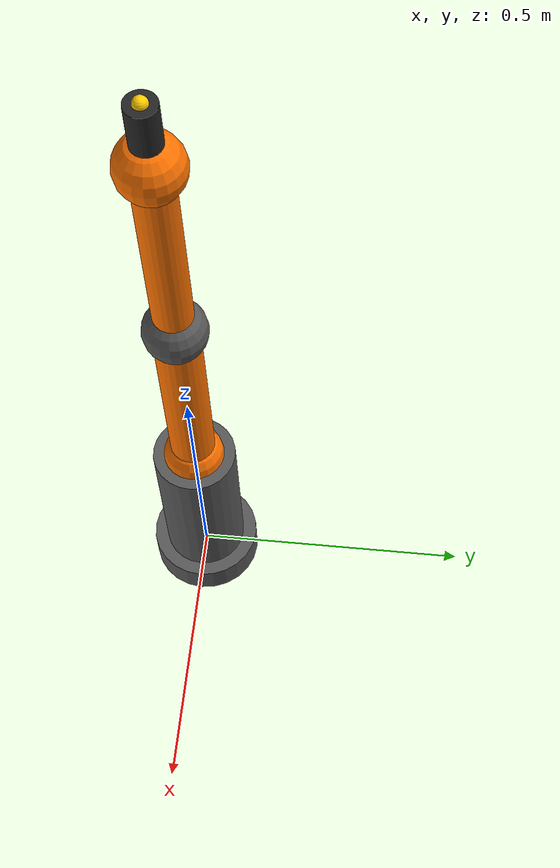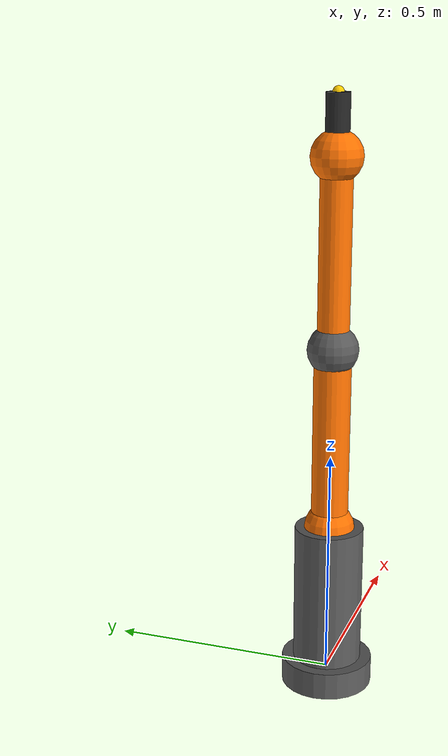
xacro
<?xml version="1.0" ?>
<robot name="poe_iiwa_robot" xmlns:xacro="http://ros.org/wiki/xacro">

  <xacro:property name="PI"       value="3.14159265358979"/>
  <xacro:property name="D_BASE"   value="0.340"/>  <!-- base to shoulder pivot -->
  <xacro:property name="L_SE"     value="0.400"/>  <!-- shoulder to elbow -->
  <xacro:property name="L_EW"     value="0.400"/>  <!-- elbow to wrist pivot -->
  <xacro:property name="D_TOOL"   value="0.126"/>  <!-- wrist to flange -->
  <xacro:property name="R"        value="0.040"/>  <!-- link tube radius -->
  <xacro:property name="R_JNT"    value="0.055"/>  <!-- joint sphere radius -->
  <xacro:property name="M"        value="2.0"/>    <!-- generic link mass -->

  <link name="world"/>
  <joint name="world_to_base" type="fixed">
    <parent link="world"/>
    <child  link="base_link"/>
    <origin xyz="0 0 0" rpy="0 0 0"/>
  </joint>

  <!-- base pedestal -->
  <link name="base_link">
    <inertial>
      <origin xyz="0 0 ${D_BASE/2}" rpy="0 0 0"/>
      <mass value="12.0"/>
      <inertia ixx="0.15" ixy="0" ixz="0" iyy="0.15" iyz="0" izz="0.06"/>
    </inertial>
    <visual>
      <origin xyz="0 0 ${D_BASE/2}" rpy="0 0 0"/>
      <geometry><cylinder radius="0.075" length="${D_BASE}"/></geometry>
      <material name="iiwa_grey"><color rgba="0.35 0.35 0.35 1"/></material>
    </visual>
    <visual>
      <origin xyz="0 0 0" rpy="0 0 0"/>
      <geometry><cylinder radius="0.100" length="0.06"/></geometry>
      <material name="iiwa_grey"><color rgba="0.35 0.35 0.35 1"/></material>
    </visual>
    <collision>
      <origin xyz="0 0 ${D_BASE/2}" rpy="0 0 0"/>
      <geometry><cylinder radius="0.075" length="${D_BASE}"/></geometry>
    </collision>
  </link>

  <!-- J0: waist — revolute Z -->
  <joint name="JOINT_0_ACT" type="revolute">
    <parent link="base_link"/>
    <child  link="link_1"/>
    <origin xyz="0 0 ${D_BASE}" rpy="0 0 0"/>
    <axis xyz="0 0 1"/>
    <limit lower="${-2.97}" upper="${2.97}" effort="320" velocity="1.48"/>
    <dynamics damping="1.0" friction="0.3"/>
  </joint>

  <!-- link_1: shoulder hub (J0=J1=J2 all concurrent here) -->
  <link name="link_1">
    <inertial>
      <origin xyz="0 0 0" rpy="0 0 0"/>
      <mass value="${M}"/>
      <inertia ixx="0.01" ixy="0" ixz="0" iyy="0.01" iyz="0" izz="0.006"/>
    </inertial>
    <visual>
      <origin xyz="0 0 0" rpy="0 0 0"/>
      <geometry><sphere radius="${R_JNT}"/></geometry>
      <material name="iiwa_orange"><color rgba="1.0 0.45 0.0 1"/></material>
    </visual>
    <collision>
      <origin xyz="0 0 0" rpy="0 0 0"/>
      <geometry><sphere radius="${R_JNT}"/></geometry>
    </collision>
  </link>

  <!-- J1: shoulder tilt — revolute Y (concurrent with J0) -->
  <joint name="JOINT_1_ACT" type="revolute">
    <parent link="link_1"/>
    <child  link="link_2"/>
    <origin xyz="0 0 0" rpy="0 0 0"/>
    <axis xyz="0 1 0"/>
    <limit lower="${-2.09}" upper="${2.09}" effort="320" velocity="1.48"/>
    <dynamics damping="1.0" friction="0.3"/>
  </joint>

  <!-- link_2: shoulder → J2 hub -->
  <link name="link_2">
    <inertial>
      <origin xyz="0 0 0" rpy="0 0 0"/>
      <mass value="0.5"/>
      <inertia ixx="0.002" ixy="0" ixz="0" iyy="0.002" iyz="0" izz="0.001"/>
    </inertial>
    <visual>
      <origin xyz="0 0 0" rpy="0 0 0"/>
      <geometry><sphere radius="${R_JNT*0.8}"/></geometry>
      <material name="iiwa_grey"><color rgba="0.5 0.5 0.5 1"/></material>
    </visual>
    <collision>
      <origin xyz="0 0 0" rpy="0 0 0"/>
      <geometry><sphere radius="${R_JNT*0.8}"/></geometry>
    </collision>
  </link>

  <!-- J2: shoulder pan — revolute Z (concurrent with J0, J1 → shoulder SRS) -->
  <joint name="JOINT_2_ACT" type="revolute">
    <parent link="link_2"/>
    <child  link="link_3"/>
    <origin xyz="0 0 0" rpy="0 0 0"/>
    <axis xyz="0 0 1"/>
    <limit lower="${-2.97}" upper="${2.97}" effort="176" velocity="1.74"/>
    <dynamics damping="0.8" friction="0.2"/>
  </joint>

  <!-- link_3: upper arm — shoulder pivot to elbow (L_SE along Z) -->
  <link name="link_3">
    <inertial>
      <origin xyz="0 0 ${L_SE/2}" rpy="0 0 0"/>
      <mass value="${M * 1.5}"/>
      <inertia ixx="0.05" ixy="0" ixz="0" iyy="0.05" iyz="0" izz="0.008"/>
    </inertial>
    <visual>
      <origin xyz="0 0 ${L_SE/2}" rpy="0 0 0"/>
      <geometry><cylinder radius="${R}" length="${L_SE}"/></geometry>
      <material name="iiwa_orange"><color rgba="1.0 0.45 0.0 1"/></material>
    </visual>
    <visual>
      <origin xyz="0 0 0" rpy="0 0 0"/>
      <geometry><sphere radius="${R_JNT}"/></geometry>
      <material name="iiwa_grey"><color rgba="0.35 0.35 0.35 1"/></material>
    </visual>
    <collision>
      <origin xyz="0 0 ${L_SE/2}" rpy="0 0 0"/>
      <geometry><cylinder radius="${R}" length="${L_SE}"/></geometry>
    </collision>
  </link>

  <!-- J3: elbow — revolute Y -->
  <joint name="JOINT_3_ACT" type="revolute">
    <parent link="link_3"/>
    <child  link="link_4"/>
    <origin xyz="0 0 ${L_SE}" rpy="0 0 0"/>
    <axis xyz="0 1 0"/>
    <limit lower="${-2.09}" upper="${2.09}" effort="176" velocity="1.74"/>
    <dynamics damping="0.8" friction="0.2"/>
  </joint>

  <!-- link_4: lower arm — elbow to wrist pivot (L_EW along Z) -->
  <link name="link_4">
    <inertial>
      <origin xyz="0 0 ${L_EW/2}" rpy="0 0 0"/>
      <mass value="${M * 1.2}"/>
      <inertia ixx="0.04" ixy="0" ixz="0" iyy="0.04" iyz="0" izz="0.007"/>
    </inertial>
    <visual>
      <origin xyz="0 0 ${L_EW/2}" rpy="0 0 0"/>
      <geometry><cylinder radius="${R * 0.85}" length="${L_EW}"/></geometry>
      <material name="iiwa_orange"><color rgba="1.0 0.45 0.0 1"/></material>
    </visual>
    <visual>
      <origin xyz="0 0 0" rpy="0 0 0"/>
      <geometry><sphere radius="${R_JNT}"/></geometry>
      <material name="iiwa_grey"><color rgba="0.35 0.35 0.35 1"/></material>
    </visual>
    <collision>
      <origin xyz="0 0 ${L_EW/2}" rpy="0 0 0"/>
      <geometry><cylinder radius="${R * 0.85}" length="${L_EW}"/></geometry>
    </collision>
  </link>

  <!-- J4: wrist roll — revolute Z, at wrist pivot -->
  <joint name="JOINT_4_ACT" type="revolute">
    <parent link="link_4"/>
    <child  link="link_5"/>
    <origin xyz="0 0 ${L_EW}" rpy="0 0 0"/>
    <axis xyz="0 0 1"/>
    <limit lower="${-2.97}" upper="${2.97}" effort="110" velocity="2.27"/>
    <dynamics damping="0.5" friction="0.1"/>
  </joint>

  <!-- link_5: wrist hub (J4=J5=J6 concurrent) -->
  <link name="link_5">
    <inertial>
      <origin xyz="0 0 0" rpy="0 0 0"/>
      <mass value="0.5"/>
      <inertia ixx="0.002" ixy="0" ixz="0" iyy="0.002" iyz="0" izz="0.001"/>
    </inertial>
    <visual>
      <origin xyz="0 0 0" rpy="0 0 0"/>
      <geometry><sphere radius="${R_JNT}"/></geometry>
      <material name="iiwa_orange"><color rgba="1.0 0.45 0.0 1"/></material>
    </visual>
    <collision>
      <origin xyz="0 0 0" rpy="0 0 0"/>
      <geometry><sphere radius="${R_JNT}"/></geometry>
    </collision>
  </link>

  <!-- J5: wrist tilt — revolute Y (concurrent with J4) -->
  <joint name="JOINT_5_ACT" type="revolute">
    <parent link="link_5"/>
    <child  link="link_6"/>
    <origin xyz="0 0 0" rpy="0 0 0"/>
    <axis xyz="0 1 0"/>
    <limit lower="${-2.09}" upper="${2.09}" effort="110" velocity="2.27"/>
    <dynamics damping="0.5" friction="0.1"/>
  </joint>

  <!-- link_6: wrist pan hub -->
  <link name="link_6">
    <inertial>
      <origin xyz="0 0 0" rpy="0 0 0"/>
      <mass value="0.3"/>
      <inertia ixx="0.001" ixy="0" ixz="0" iyy="0.001" iyz="0" izz="0.0005"/>
    </inertial>
    <visual>
      <origin xyz="0 0 0" rpy="0 0 0"/>
      <geometry><sphere radius="${R_JNT*0.8}"/></geometry>
      <material name="iiwa_grey"><color rgba="0.35 0.35 0.35 1"/></material>
    </visual>
    <collision>
      <origin xyz="0 0 0" rpy="0 0 0"/>
      <geometry><sphere radius="${R_JNT*0.8}"/></geometry>
    </collision>
  </link>

  <!-- J6: wrist roll — revolute Z (concurrent with J4, J5 → wrist SRS) -->
  <joint name="JOINT_6_ACT" type="revolute">
    <parent link="link_6"/>
    <child  link="link_7"/>
    <origin xyz="0 0 0" rpy="0 0 0"/>
    <axis xyz="0 0 1"/>
    <limit lower="${-3.05}" upper="${3.05}" effort="40" velocity="3.14"/>
    <dynamics damping="0.2" friction="0.05"/>
  </joint>

  <!-- link_7: flange + TCP marker -->
  <link name="link_7">
    <inertial>
      <origin xyz="0 0 ${D_TOOL/2}" rpy="0 0 0"/>
      <mass value="0.2"/>
      <inertia ixx="0.0005" ixy="0" ixz="0" iyy="0.0005" iyz="0" izz="0.0002"/>
    </inertial>
    <visual>
      <origin xyz="0 0 ${D_TOOL/2}" rpy="0 0 0"/>
      <geometry><cylinder radius="0.025" length="${D_TOOL}"/></geometry>
      <material name="iiwa_dark"><color rgba="0.15 0.15 0.15 1"/></material>
    </visual>
    <visual>
      <origin xyz="0 0 ${D_TOOL}" rpy="0 0 0"/>
      <geometry><sphere radius="0.012"/></geometry>
      <material name="iiwa_tcp"><color rgba="1.0 0.8 0.0 1"/></material>
    </visual>
    <collision>
      <origin xyz="0 0 ${D_TOOL/2}" rpy="0 0 0"/>
      <geometry><cylinder radius="0.025" length="${D_TOOL}"/></geometry>
    </collision>
  </link>

</robot>
